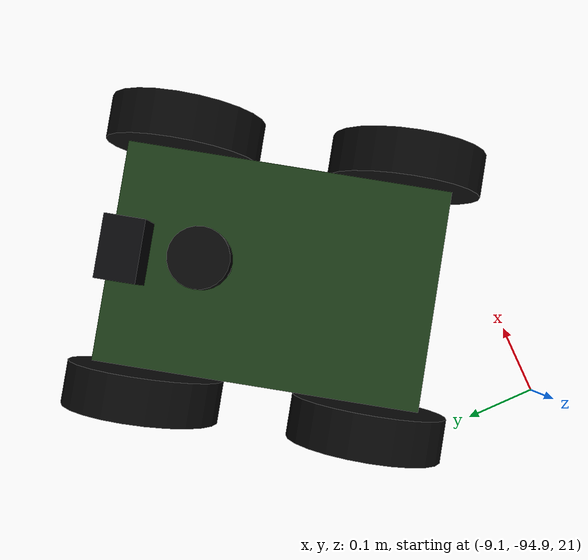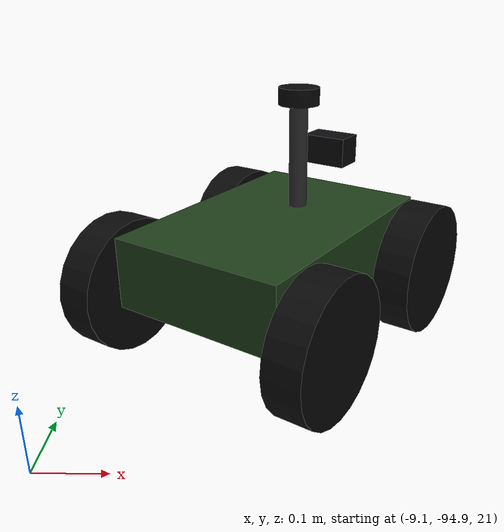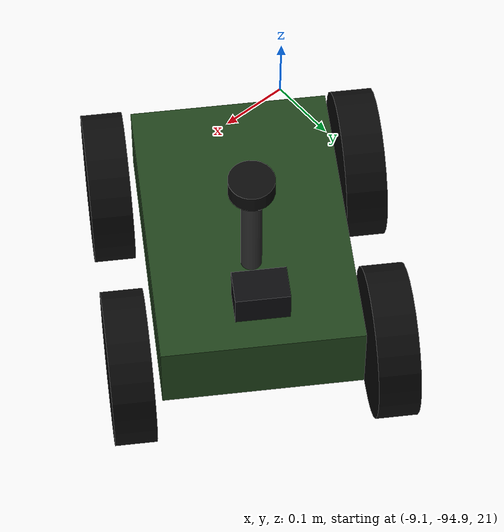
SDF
<sdf version="1.10">
 <world name="headless_smoke">
  <physics name="1ms" type="ignored">
   <max_step_size>0.001</max_step_size>
   <real_time_factor>1.0</real_time_factor>
  </physics>
  <gravity>0 0 -9.81</gravity>
  <spherical_coordinates>
   <surface_model>EARTH_WGS84</surface_model>
   <world_frame_orientation>ENU</world_frame_orientation>
   <latitude_deg>30.326139</latitude_deg>
   <longitude_deg>-98.148264</longitude_deg>
   <elevation>230.112</elevation>
   <heading_deg>0</heading_deg>
  </spherical_coordinates>
  <plugin filename="gz-sim-physics-system" name="gz::sim::systems::Physics"/>
  <plugin filename="gz-sim-user-commands-system" name="gz::sim::systems::UserCommands"/>
  <plugin filename="gz-sim-scene-broadcaster-system" name="gz::sim::systems::SceneBroadcaster"/>
  <plugin filename="gz-sim-imu-system" name="gz::sim::systems::Imu"/>
  <plugin filename="gz-sim-navsat-system" name="gz::sim::systems::NavSat"/>
  <include><uri>model://hill_rover</uri></include>
 </world>
</sdf>

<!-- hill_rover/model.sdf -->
<sdf version="1.10">
  <model name="hill_rover">
    <self_collide>false</self_collide>
    <!-- Route 11 start. XY comes from WGS84 projection to the world datum. -->
    <pose>-8.802 -94.620 21.046 0 0 1.000871</pose>

    <link name="base_link">
      <inertial>
        <mass>1.125</mass>
        <inertia><ixx>0.009765625</ixx><iyy>0.01806640625</iyy><izz>0.0234375</izz></inertia>
      </inertial>
      <collision name="body_collision">
        <pose>0 0 0.14 0 0 0</pose>
        <geometry><box><size>0.3875 0.2625 0.105</size></box></geometry>
      </collision>
      <visual name="body_visual">
        <pose>0 0 0.14 0 0 0</pose>
        <geometry><box><size>0.3875 0.2625 0.105</size></box></geometry>
        <material><diffuse>0.12 0.25 0.10 1</diffuse><ambient>0.08 0.15 0.06 1</ambient></material>
      </visual>
      <visual name="sensor_mast">
        <pose>0.0625 0 0.2575 0 0 0</pose>
        <geometry><cylinder><radius>0.01375</radius><length>0.1875</length></cylinder></geometry>
        <material><diffuse>0.18 0.18 0.18 1</diffuse></material>
      </visual>
      <visual name="lidar_visual">
        <pose>0.0625 0 0.3575 0 0 0</pose>
        <geometry><cylinder><radius>0.03</radius><length>0.025</length></cylinder></geometry>
        <material><diffuse>0.04 0.04 0.04 1</diffuse></material>
      </visual>
      <visual name="front_camera_visual">
        <pose>0.16 0 0.26 0 0 0</pose>
        <geometry><box><size>0.045 0.07 0.045</size></box></geometry>
        <material><diffuse>0.04 0.04 0.05 1</diffuse></material>
      </visual>
      <sensor name="imu" type="imu">
        <topic>/model/hill_rover/imu</topic><update_rate>100</update_rate><always_on>true</always_on>
      </sensor>
      <sensor name="navsat" type="navsat">
        <topic>/model/hill_rover/navsat</topic><update_rate>10</update_rate><always_on>true</always_on>
      </sensor>
      <sensor name="lidar" type="gpu_lidar">
        <pose>0.0625 0 0.3725 0 0 0</pose>
        <topic>/model/hill_rover/lidar</topic><update_rate>15</update_rate><always_on>true</always_on>
        <lidar>
          <scan>
            <horizontal><samples>720</samples><resolution>1</resolution><min_angle>-2.356</min_angle><max_angle>2.356</max_angle></horizontal>
            <vertical><samples>16</samples><resolution>1</resolution><min_angle>-0.26</min_angle><max_angle>0.26</max_angle></vertical>
          </scan>
          <range><min>0.06</min><max>45</max><resolution>0.01</resolution></range>
          <noise><type>gaussian</type><mean>0</mean><stddev>0.005</stddev></noise>
        </lidar>
      </sensor>
      <!-- Perfect-label simulation of Meridian's front RGB-D semantic input.
           Both renderers share an optical pose, FOV, shape, and frame rate. -->
      <sensor name="semantic_camera" type="segmentation">
        <pose>0.16 0 0.26 0 0.22 0</pose>
        <topic>/model/hill_rover/semantic</topic>
        <update_rate>5</update_rate><always_on>true</always_on>
        <camera>
          <segmentation_type>semantic</segmentation_type>
          <horizontal_fov>1.3962634</horizontal_fov>
          <image><width>320</width><height>240</height></image>
          <clip><near>0.30</near><far>8.0</far></clip>
        </camera>
      </sensor>
      <sensor name="depth_camera" type="depth_camera">
        <pose>0.16 0 0.26 0 0.22 0</pose>
        <topic>/model/hill_rover/depth</topic>
        <update_rate>5</update_rate><always_on>true</always_on>
        <camera>
          <horizontal_fov>1.3962634</horizontal_fov>
          <image><width>320</width><height>240</height><format>R_FLOAT32</format></image>
          <clip><near>0.30</near><far>8.0</far></clip>
        </camera>
      </sensor>
    </link>

    <link name="front_left_strut"><pose>0.145 0.17 0.10 0 0 0</pose><inertial><mass>0.03</mass><inertia><ixx>0.00002</ixx><iyy>0.00002</iyy><izz>0.00002</izz></inertia></inertial></link>
    <link name="rear_left_strut"><pose>-0.145 0.17 0.10 0 0 0</pose><inertial><mass>0.03</mass><inertia><ixx>0.00002</ixx><iyy>0.00002</iyy><izz>0.00002</izz></inertia></inertial></link>
    <link name="front_right_strut"><pose>0.145 -0.17 0.10 0 0 0</pose><inertial><mass>0.03</mass><inertia><ixx>0.00002</ixx><iyy>0.00002</iyy><izz>0.00002</izz></inertia></inertial></link>
    <link name="rear_right_strut"><pose>-0.145 -0.17 0.10 0 0 0</pose><inertial><mass>0.03</mass><inertia><ixx>0.00002</ixx><iyy>0.00002</iyy><izz>0.00002</izz></inertia></inertial></link>

    <link name="front_left_steering"><pose relative_to="front_left_strut">0 0 0 0 0 0</pose><inertial><mass>0.01</mass><inertia><ixx>0.000005</ixx><iyy>0.000005</iyy><izz>0.000005</izz></inertia></inertial></link>
    <link name="front_right_steering"><pose relative_to="front_right_strut">0 0 0 0 0 0</pose><inertial><mass>0.01</mass><inertia><ixx>0.000005</ixx><iyy>0.000005</iyy><izz>0.000005</izz></inertia></inertial></link>

    <link name="front_left_wheel"><pose relative_to="front_left_steering">0 0 0 -1.570796 0 0</pose><inertial><mass>0.109375</mass><inertia><ixx>0.00030100911</ixx><iyy>0.00030100911</iyy><izz>0.000546875</izz></inertia></inertial><collision name="collision"><geometry><cylinder><radius>0.10</radius><length>0.055</length></cylinder></geometry><surface><friction><ode><mu>1.15</mu><mu2>0.65</mu2></ode></friction></surface></collision><visual name="visual"><geometry><cylinder><radius>0.10</radius><length>0.055</length></cylinder></geometry><material><diffuse>0.035 0.035 0.035 1</diffuse></material></visual></link>
    <link name="rear_left_wheel"><pose relative_to="rear_left_strut">0 0 0 -1.570796 0 0</pose><inertial><mass>0.109375</mass><inertia><ixx>0.00030100911</ixx><iyy>0.00030100911</iyy><izz>0.000546875</izz></inertia></inertial><collision name="collision"><geometry><cylinder><radius>0.10</radius><length>0.055</length></cylinder></geometry><surface><friction><ode><mu>1.15</mu><mu2>0.65</mu2></ode></friction></surface></collision><visual name="visual"><geometry><cylinder><radius>0.10</radius><length>0.055</length></cylinder></geometry><material><diffuse>0.035 0.035 0.035 1</diffuse></material></visual></link>
    <link name="front_right_wheel"><pose relative_to="front_right_steering">0 0 0 -1.570796 0 0</pose><inertial><mass>0.109375</mass><inertia><ixx>0.00030100911</ixx><iyy>0.00030100911</iyy><izz>0.000546875</izz></inertia></inertial><collision name="collision"><geometry><cylinder><radius>0.10</radius><length>0.055</length></cylinder></geometry><surface><friction><ode><mu>1.15</mu><mu2>0.65</mu2></ode></friction></surface></collision><visual name="visual"><geometry><cylinder><radius>0.10</radius><length>0.055</length></cylinder></geometry><material><diffuse>0.035 0.035 0.035 1</diffuse></material></visual></link>
    <link name="rear_right_wheel"><pose relative_to="rear_right_strut">0 0 0 -1.570796 0 0</pose><inertial><mass>0.109375</mass><inertia><ixx>0.00030100911</ixx><iyy>0.00030100911</iyy><izz>0.000546875</izz></inertia></inertial><collision name="collision"><geometry><cylinder><radius>0.10</radius><length>0.055</length></cylinder></geometry><surface><friction><ode><mu>1.15</mu><mu2>0.65</mu2></ode></friction></surface></collision><visual name="visual"><geometry><cylinder><radius>0.10</radius><length>0.055</length></cylinder></geometry><material><diffuse>0.035 0.035 0.035 1</diffuse></material></visual></link>

    <joint name="front_left_suspension" type="prismatic"><parent>base_link</parent><child>front_left_strut</child><axis><xyz>0 0 1</xyz><limit><lower>-0.03</lower><upper>0.02</upper><effort>50</effort><velocity>2</velocity></limit><dynamics><damping>18</damping><spring_stiffness>400</spring_stiffness><spring_reference>0</spring_reference></dynamics></axis></joint>
    <joint name="rear_left_suspension" type="prismatic"><parent>base_link</parent><child>rear_left_strut</child><axis><xyz>0 0 1</xyz><limit><lower>-0.03</lower><upper>0.02</upper><effort>50</effort><velocity>2</velocity></limit><dynamics><damping>18</damping><spring_stiffness>400</spring_stiffness><spring_reference>0</spring_reference></dynamics></axis></joint>
    <joint name="front_right_suspension" type="prismatic"><parent>base_link</parent><child>front_right_strut</child><axis><xyz>0 0 1</xyz><limit><lower>-0.03</lower><upper>0.02</upper><effort>50</effort><velocity>2</velocity></limit><dynamics><damping>18</damping><spring_stiffness>400</spring_stiffness><spring_reference>0</spring_reference></dynamics></axis></joint>
    <joint name="rear_right_suspension" type="prismatic"><parent>base_link</parent><child>rear_right_strut</child><axis><xyz>0 0 1</xyz><limit><lower>-0.03</lower><upper>0.02</upper><effort>50</effort><velocity>2</velocity></limit><dynamics><damping>18</damping><spring_stiffness>400</spring_stiffness><spring_reference>0</spring_reference></dynamics></axis></joint>

    <joint name="front_left_steering_joint" type="revolute"><parent>front_left_strut</parent><child>front_left_steering</child><axis><xyz>0 0 1</xyz><limit><lower>-1.0471975512</lower><upper>1.0471975512</upper><effort>5</effort><velocity>6</velocity></limit><dynamics><damping>0.02</damping></dynamics></axis></joint>
    <joint name="front_right_steering_joint" type="revolute"><parent>front_right_strut</parent><child>front_right_steering</child><axis><xyz>0 0 1</xyz><limit><lower>-1.0471975512</lower><upper>1.0471975512</upper><effort>5</effort><velocity>6</velocity></limit><dynamics><damping>0.02</damping></dynamics></axis></joint>

    <joint name="front_left_joint" type="revolute"><parent>front_left_steering</parent><child>front_left_wheel</child><axis><xyz>0 0 1</xyz><limit><effort>0.703125</effort><velocity>35</velocity></limit><dynamics><damping>0.0005859375</damping></dynamics></axis></joint>
    <joint name="rear_left_joint" type="revolute"><parent>rear_left_strut</parent><child>rear_left_wheel</child><axis><xyz>0 0 1</xyz><limit><effort>0.703125</effort><velocity>35</velocity></limit><dynamics><damping>0.0005859375</damping></dynamics></axis></joint>
    <joint name="front_right_joint" type="revolute"><parent>front_right_steering</parent><child>front_right_wheel</child><axis><xyz>0 0 1</xyz><limit><effort>0.703125</effort><velocity>35</velocity></limit><dynamics><damping>0.0005859375</damping></dynamics></axis></joint>
    <joint name="rear_right_joint" type="revolute"><parent>rear_right_strut</parent><child>rear_right_wheel</child><axis><xyz>0 0 1</xyz><limit><effort>0.703125</effort><velocity>35</velocity></limit><dynamics><damping>0.0005859375</damping></dynamics></axis></joint>

    <plugin filename="gz-sim-ackermann-steering-system" name="gz::sim::systems::AckermannSteering">
      <left_joint>front_left_joint</left_joint><left_joint>rear_left_joint</left_joint>
      <right_joint>front_right_joint</right_joint><right_joint>rear_right_joint</right_joint>
      <left_steering_joint>front_left_steering_joint</left_steering_joint>
      <right_steering_joint>front_right_steering_joint</right_steering_joint>
      <kingpin_width>0.34</kingpin_width>
      <steering_limit>1.0341605521</steering_limit>
      <wheel_base>0.29</wheel_base><wheel_separation>0.34</wheel_separation><wheel_radius>0.10</wheel_radius>
      <topic>/model/hill_rover/cmd_vel</topic><odom_topic>/model/hill_rover/odometry</odom_topic>
      <frame_id>odom</frame_id><child_frame_id>base_link</child_frame_id><odom_publish_frequency>50</odom_publish_frequency>
      <steer_p_gain>8.0</steer_p_gain>
      <min_velocity>-4.4</min_velocity><max_velocity>4.4</max_velocity>
      <min_acceleration>-25</min_acceleration><max_acceleration>25</max_acceleration>
    </plugin>
  </model>
</sdf>
